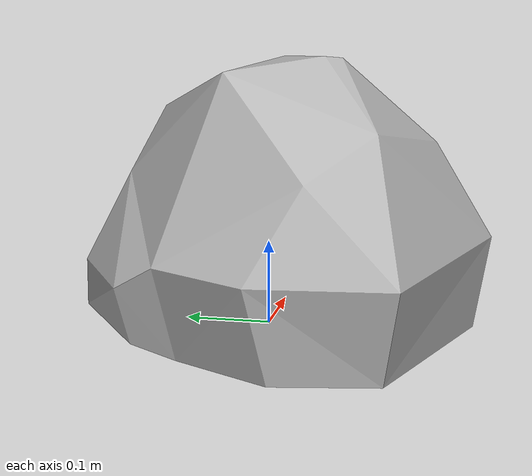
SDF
<?xml version="1.0" ?>
<sdf version="1.5">
  <model name="mars_rock_1">
    <static>true</static>
    <link name="link">
      <collision name="collision">
        <geometry>
          <mesh>
            <uri>model://mars_rock_1/meshes/mars_rock_1.obj</uri>
            <scale>0.03 0.03 0.03</scale>
          </mesh>
        </geometry>
      </collision>
      <visual name="visual">
        <geometry>
          <mesh>
            <uri>model://mars_rock_1/meshes/mars_rock_1.obj</uri>
            <scale>0.03 0.03 0.03</scale>
          </mesh>
        </geometry>
      </visual>
    </link>
  </model>
</sdf>
